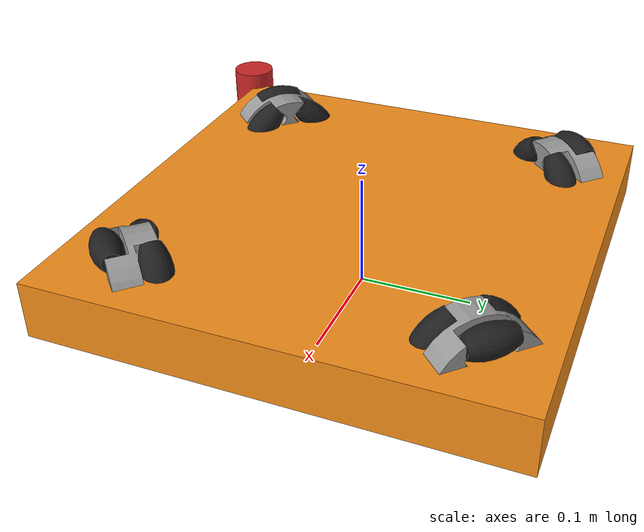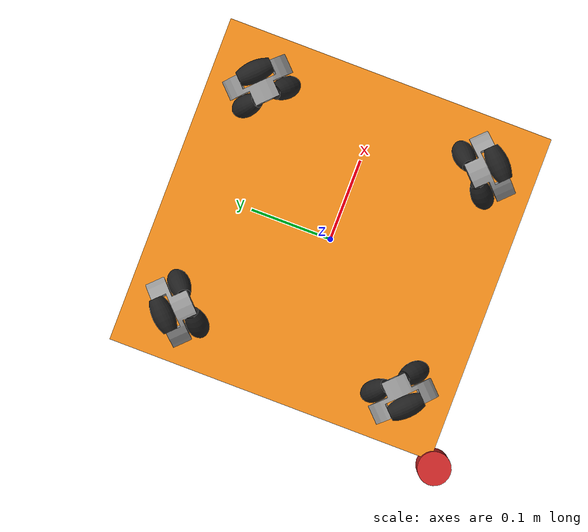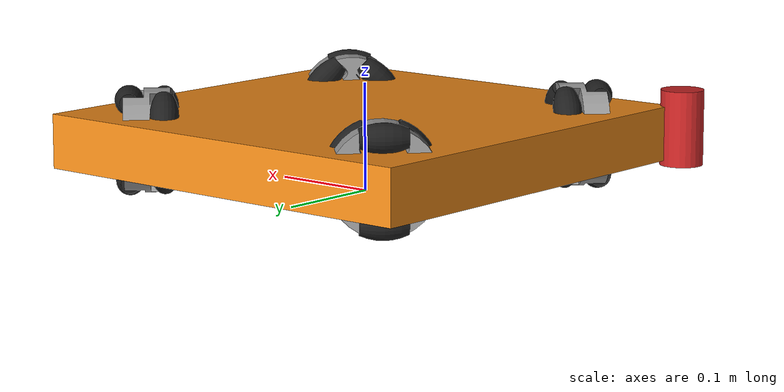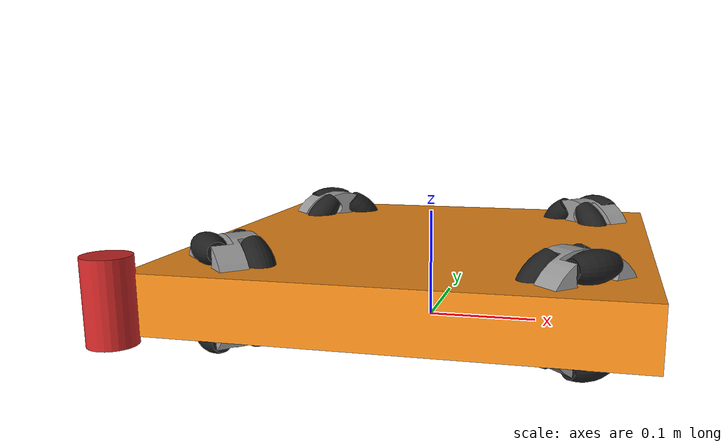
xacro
<?xml version="1.0"?>
<robot name="haru25"
    xmlns:xacro="http://ros.org/wiki/xacro">

    <!--roslaunch urdf_tutorial display.launch model:=haru25.xacro-->

    <!--Don't write Japanese-->
    <xacro:property name="base" value="$(find haru25_gazebo)/urdf"/>
    <xacro:property name="omni" value="$(find haru25_gazebo)/urdf"/>

    <xacro:include filename="${base}/body.xacro"/>
    <xacro:include filename="${base}/imu.xacro"/>
    <xacro:include filename="${base}/laser.xacro"/>

    <xacro:include filename="${omni}/omni100.xacro"/>
    <xacro:include filename="${omni}/haru25.ros2_control.xacro"/>
    <xacro:include filename="${omni}/haru25.gazebo.xacro"/>

    <xacro:property name="wheel_base" value="0.198" />

    <link name="base_link"/>

    <xacro:body_macro parent="base_link"/>

    <xacro:imu_macro prefix="imu" parent="base_link" xyz="0 0 0"/>
    <!--TOF-->
    <xacro:laser_macro prefix="laser" parent="base_link" xyz="-0.206902 -0.207186 0.02" rpy="0 0 ${radians(45)}"/>

    <xacro:omni100 prefix="wheel0" parent="base_link" xyz="${wheel_base*cos(radians(45))} ${wheel_base*sin(radians(45))} 0.05" rpy="0 0 ${radians(45)}"/>
    <xacro:omni100 prefix="wheel1" parent="base_link" xyz="${wheel_base*cos(radians(135))} ${wheel_base*sin(radians(135))} 0.05" rpy="0 0 ${radians(135)}"/>
    <xacro:omni100 prefix="wheel2" parent="base_link" xyz="${wheel_base*cos(radians(-135))} ${wheel_base*sin(radians(-135))} 0.05" rpy="0 0 ${radians(-135)}"/>
    <xacro:omni100 prefix="wheel3" parent="base_link" xyz="${wheel_base*cos(radians(-45))} ${wheel_base*sin(radians(-45))} 0.05" rpy="0 0 ${radians(-45)}"/>

    <xacro:haru25_system/>
    <xacro:haru25_gazebo/>
</robot>

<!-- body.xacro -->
<robot xmlns:xacro="http://ros.org/wiki/xacro">

    <xacro:macro name="body_macro" params="parent">

        <joint name="${parent}" type="fixed">
            <parent link="base_link"/>
            <child link="func_link"/>
            <origin xyz="0 0 0.05" rpy="0 0 0"/>
        </joint>
        <link name="func_link">
            <inertial>
                <origin xyz="0 0 0" rpy="0 0 0"/>
                <mass value="15"/>
                <inertia ixx="0.425" ixy="0.0" ixz="0.0" iyy="0.425" iyz="0.0" izz="0.625"/>
            </inertial>
            <visual>
                <geometry>
                    <box size="0.4 0.4 0.05" />
                </geometry>
            </visual>
            <collision>
                <geometry>
                    <box size="0.0 0.0 0.0" />
                </geometry>
            </collision>
        </link>

        <gazebo reference="func_link">
            <material>Gazebo/OrangeTransparentOverlay</material>
        </gazebo>

    </xacro:macro>

</robot>

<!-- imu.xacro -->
<robot xmlns:xacro="http://ros.org/wiki/xacro">
  <xacro:macro name="imu_macro" params="parent prefix xyz">
    <joint name="imu_joint" type="fixed">
      <parent link="${parent}"/>
      <child link="${prefix}_link"/>
      <origin xyz="${xyz}" rpy="0 0 0"/>
    </joint>
    <link name="${prefix}_link"/>
    <gazebo reference="${prefix}_link">
      <sensor name="gazebo_imu" type="imu">
        <gravity>true</gravity>
        <visualize>true</visualize>
        <update_rate>100</update_rate>
        <always_on>true</always_on>
        <plugin filename="libgazebo_ros_imu_sensor.so" name="imu_plugin">
          <ros>
            <remapping>~/out:=imu</remapping>
          </ros>
          <initial_orientation_as_reference>false</initial_orientation_as_reference>
          <output_type>sensor_msgs/Imu</output_type>
          <frame_name>imu_link</frame_name>
        </plugin>
        <imu>
          <angular_velocity>
            <x>
              <noise type="gaussian">
                <mean>0.0</mean>
                <stddev>2e-04</stddev>
                <bias_mean>0.0000075</bias_mean>
                <bias_stddev>0.0000008</bias_stddev>
              </noise>
            </x>
            <y>
              <nosie type="gaussian">
                <mean>0.0</mean>
                <stddev>2e-04</stddev>
                <bias_mean>0.0000075</bias_mean>
                <bias_stddev>0.0000008</bias_stddev>
              </nosie>
            </y>
            <z>
              <nosie type="gaussian">
                <mean>0.0</mean>
                <stddev>2e-04</stddev>
                <bias_mean>0.0000075</bias_mean>
                <bias_stddev>0.0000008</bias_stddev>
              </nosie>
            </z>
          </angular_velocity>
          <linear_acceleration>
            <x>
              <nosie type="gaussian">
                <mean>0.0</mean>
                <stddev>1.7e-02</stddev>
                <bias_mean>0.001</bias_mean>
                <bias_stddev>0.001</bias_stddev>
              </nosie>
            </x>
            <y>
              <nosie type="gaussian">
                <mean>0.0</mean>
                <stddev>1.7e-02</stddev>
                <bias_mean>0.001</bias_mean>
                <bias_stddev>0.001</bias_stddev>
              </nosie>
            </y>
            <z>
              <nosie type="gaussian">
                <mean>0.0</mean>
                <stddev>1.7e-02</stddev>
                <bias_mean>0.001</bias_mean>
                <bias_stddev>0.001</bias_stddev>
              </nosie>
            </z>
          </linear_acceleration>
        </imu>
      </sensor>
    </gazebo>
  </xacro:macro>
</robot>

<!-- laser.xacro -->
<robot xmlns:xacro="http://ros.org/wiki/xacro">
  <xacro:macro name="laser_macro" params="parent prefix xyz rpy">
    <joint name="${prefix}_joint" type="fixed">
      <parent link="${parent}"/>
      <child link="${prefix}_link"/>
      <origin xyz="${xyz}" rpy="${rpy}"/>
    </joint>
    <link name="${prefix}_link">
      <visual>
        <origin xyz="0 0 0.035" rpy="0 0 0" />
        <geometry>
          <cylinder radius="0.02" length="0.07" />
        </geometry>
      </visual>
      <collision>
        <origin xyz="0 0 0.035" rpy="0 0 0"/>
        <geometry>
          <cylinder radius="0.0" length="0.0" />
        </geometry>
      </collision>
    </link>
    <gazebo reference="${prefix}_link">
      <material>Gazebo/Red</material>
      <sensor type="ray" name="${prefix}">
        <pose>0 0 0.0474 0 0 0</pose>
        <always_on>true</always_on>
        <visualize>true</visualize>
        <update_rate>10</update_rate>
        <plugin filename="libgazebo_ros_ray_sensor.so" name="gazebo_lidar_${prefix}">
          <ros>
            <remapping>~/out:=/scan</remapping>
          </ros>
          <output_type>sensor_msgs/LaserScan</output_type>
          <frame_name>${prefix}_link</frame_name>
        </plugin>
        <ray>
          <scan>
            <horizontal>
              <samples>503</samples>
              <resolution>1</resolution>
              <min_angle>0</min_angle>
              <max_angle>6.283185307</max_angle>
            </horizontal>
          </scan>
          <range>
            <min>0.10</min>
            <max>20.0</max>
            <resolution>0.01</resolution>
          </range>
          <noise>
            <type>gaussian</type>
            <mean>0.0</mean>
            <stddev>0.01</stddev>
          </noise>
        </ray>
      </sensor>
    </gazebo>
  </xacro:macro>
</robot>

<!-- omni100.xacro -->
<robot xmlns:xacro="http://ros.org/wiki/xacro">
    <!--barrel macro-->
    <xacro:macro name="barrel" params="prefix parent dir">
        <joint name="${prefix}_joint" type="continuous">
            <parent link="${parent}"/>
            <child link="${prefix}_link"/>
            <origin rpy="${pi/2} 0 ${dir}" xyz="${0.036842105*cos(dir)} ${0.036842105*sin(dir)} 0.015789474"/>
            <axis xyz="0 0 1"/>
            <dynamics damping="0.001"/>
        </joint>
        <link name="${prefix}_link">
            <visual>
                <geometry>
                    <mesh filename="file://$(find haru25_gazebo)/urdf/omni_barrel100.stl" />
                </geometry>
            </visual>
            <collision>
                <geometry>
                    <mesh filename="file://$(find haru25_gazebo)/urdf/omni_barrel100.stl" />
                </geometry>
            </collision>
            <inertial>
                <mass value="0.004"/>
                <inertia ixx="0.000001" ixy="0" ixz="0" iyy="0.000001" iyz="0" izz="0.000001"/>
            </inertial>
        </link>
        <gazebo reference="${prefix}_link">
            <mu1 value="5" />
            <mu2 value="5" />
            <kp value="7500" />
            <kd value="20" />
            <material>Gazebo/Black</material>
        </gazebo>
    </xacro:macro>

    <!--here-->
    <xacro:macro name="omni100" params="prefix parent xyz rpy">
        <joint name="${prefix}_base_joint" type="fixed">
            <parent link="${parent}"/>
            <child link="${prefix}_base_link"/>
            <origin xyz="${xyz}" rpy="${rpy}"/>
        </joint>
        <link name="${prefix}_base_link">
            <inertial>
                <mass value="0.010"/>
                <inertia ixx="0.0001" ixy="0" ixz="0" iyy="0.0001" iyz="0" izz="0.0001"/>
            </inertial>
        </link>

        <joint name="${prefix}_joint" type="continuous">
            <origin xyz="0 0 0" rpy="0 ${radians(90)} 0"/>
            <parent link="${prefix}_base_link"/>
            <child link="${prefix}_housing_link"/>
            <axis xyz="0 0 1" />
            <limit effort="4.6" velocity="68"/>
            <joint_properties damping="0.01" friction="0.01" />
        </joint>

        <link name="${prefix}_housing_link">
            <visual>
                <origin xyz="0 0 0" rpy="0 0 0"/>
                <geometry>
                    <mesh filename="file://$(find haru25_gazebo)/urdf/omni_housing100.stl" />
                </geometry>
            </visual>
            <inertial>
                <mass value="0.05"/>
                <inertia ixx="0.00001" ixy="0" ixz="0" iyy="0.00001" iyz="0" izz="0.00001"/>
            </inertial>
        </link>
        <gazebo reference="${prefix}_housing_link">
            <material>Gazebo/Gray</material>
        </gazebo>

        <joint name="${prefix}_housing_s_joint" type="fixed">
            <parent link="${prefix}_housing_link"/>
            <child link="${prefix}_housing_s_link"/>
            <origin rpy="0 ${pi} ${pi/4}" xyz="0 0 0"/>
        </joint>
        <link name="${prefix}_housing_s_link">
            <inertial>
                <mass value="0.05"/>
                <inertia ixx="0.0001" ixy="0" ixz="0" iyy="0.0001" iyz="0" izz="0.0001"/>
            </inertial>
        </link>

        <xacro:barrel prefix="${prefix}_barrel_1" parent="${prefix}_housing_link" dir="0"/>
        <xacro:barrel prefix="${prefix}_barrel_2" parent="${prefix}_housing_link" dir="${pi/2}"/>
        <xacro:barrel prefix="${prefix}_barrel_3" parent="${prefix}_housing_link" dir="${pi}"/>
        <xacro:barrel prefix="${prefix}_barrel_4" parent="${prefix}_housing_link" dir="${-pi/2}"/>
        <xacro:barrel prefix="${prefix}_barrel_5" parent="${prefix}_housing_s_link" dir="0"/>
        <xacro:barrel prefix="${prefix}_barrel_6" parent="${prefix}_housing_s_link" dir="${pi/2}"/>
        <xacro:barrel prefix="${prefix}_barrel_7" parent="${prefix}_housing_s_link" dir="${pi}"/>
        <xacro:barrel prefix="${prefix}_barrel_8" parent="${prefix}_housing_s_link" dir="${-pi/2}"/>
    </xacro:macro>
</robot>
